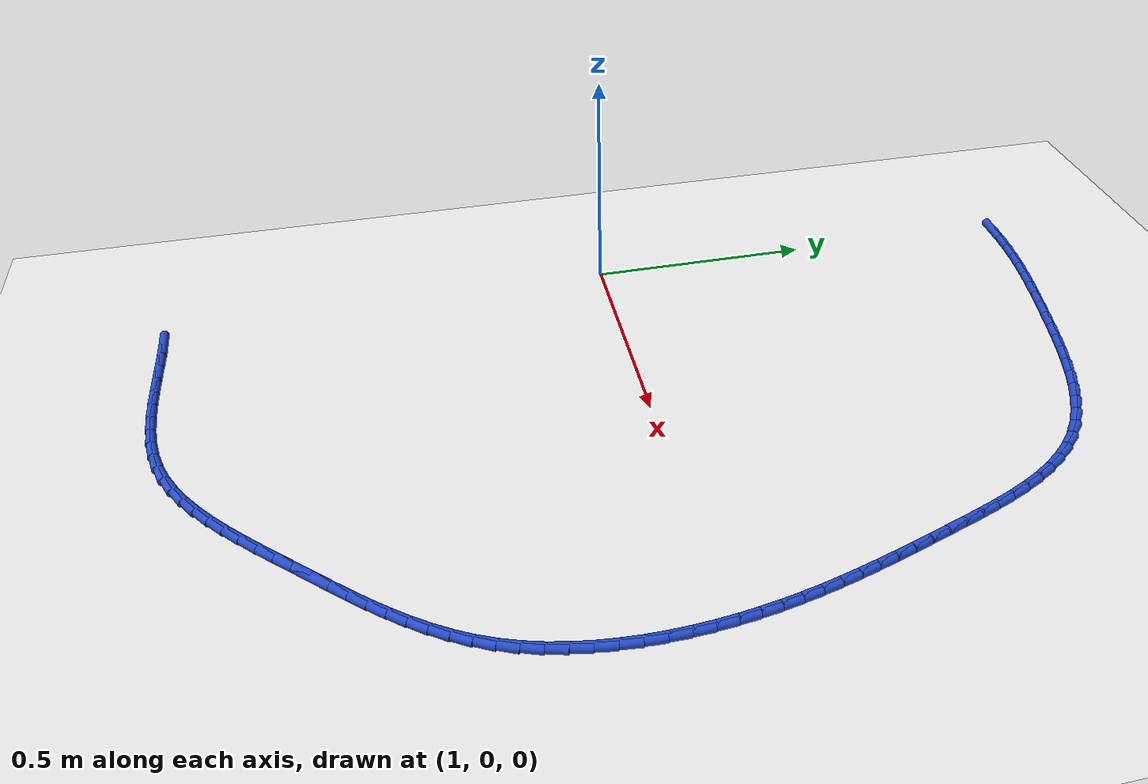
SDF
<sdf version="1.6">
 <world name="default">
  <model name="ground_plane">
   <static>1</static>
   <link name="link">
    <collision name="collision">
     <geometry><plane><normal>0 0 1</normal><size>100 100</size></plane></geometry>
     <surface><friction><ode><mu>100</mu><mu2>50</mu2></ode></friction></surface>
    </collision>
    <visual name="visual">
     <cast_shadows>0</cast_shadows>
     <geometry><plane><normal>0 0 1</normal><size>100 100</size></plane></geometry>
     <material>
      <script><uri>file://media/materials/scripts/gazebo.material</uri><name>Gazebo/WhiteGlow</name></script>
     </material>
    </visual>
   </link>
  </model>
  <model name="line">
   <link name="link_39">
    <pose>1.0367507970133014 1.0144253928978786 0.01 0 1.57 -0.028605266189398515</pose>
    <collision name="collision">
     <geometry><cylinder><radius>0.01</radius><length>0.08</length></cylinder></geometry>
    </collision>
    <visual name="visual">
     <material>
      <script><name>Gazebo/Blue</name><uri>file://media/materials/scripts/gazebo.material</uri></script>
     </material>
     <geometry><cylinder><radius>0.01</radius><length>0.08</length></cylinder></geometry>
    </visual>
   </link>
   <link name="link_40">
    <pose>1.0774809376484957 1.0132599784945855 0.01 0 1.57 -0.06942494627487604</pose>
    <collision name="collision">
     <geometry><cylinder><radius>0.01</radius><length>0.08</length></cylinder></geometry>
    </collision>
    <visual name="visual">
     <material>
      <script><name>Gazebo/Blue</name><uri>file://media/materials/scripts/gazebo.material</uri></script>
     </material>
     <geometry><cylinder><radius>0.01</radius><length>0.08</length></cylinder></geometry>
    </visual>
   </link>
   <link name="link_41">
    <pose>1.117806039749113 1.0104559039516745 0.01 0 1.57 -0.10687129788580829</pose>
    <collision name="collision">
     <geometry><cylinder><radius>0.01</radius><length>0.08</length></cylinder></geometry>
    </collision>
    <visual name="visual">
     <material>
      <script><name>Gazebo/Blue</name><uri>file://media/materials/scripts/gazebo.material</uri></script>
     </material>
     <geometry><cylinder><radius>0.01</radius><length>0.08</length></cylinder></geometry>
    </visual>
   </link>
   <link name="link_42">
    <pose>1.1577941958818514 1.0061659729103958 0.01 0 1.57 -0.13987777914664257</pose>
    <collision name="collision">
     <geometry><cylinder><radius>0.01</radius><length>0.08</length></cylinder></geometry>
    </collision>
    <visual name="visual">
     <material>
      <script><name>Gazebo/Blue</name><uri>file://media/materials/scripts/gazebo.material</uri></script>
     </material>
     <geometry><cylinder><radius>0.01</radius><length>0.08</length></cylinder></geometry>
    </visual>
   </link>
   <link name="link_43">
    <pose>1.1975665140257667 1.0005661399250065 0.01 0 1.57 -0.16811064082272698</pose>
    <collision name="collision">
     <geometry><cylinder><radius>0.01</radius><length>0.08</length></cylinder></geometry>
    </collision>
    <visual name="visual">
     <material>
      <script><name>Gazebo/Blue</name><uri>file://media/materials/scripts/gazebo.material</uri></script>
     </material>
     <geometry><cylinder><radius>0.01</radius><length>0.08</length></cylinder></geometry>
    </visual>
   </link>
   <link name="link_44">
    <pose>1.2372441036450272 0.9938323601982882 0.01 0 1.57 -0.19135759226672464</pose>
    <collision name="collision">
     <geometry><cylinder><radius>0.01</radius><length>0.08</length></cylinder></geometry>
    </collision>
    <visual name="visual">
     <material>
      <script><name>Gazebo/Blue</name><uri>file://media/materials/scripts/gazebo.material</uri></script>
     </material>
     <geometry><cylinder><radius>0.01</radius><length>0.08</length></cylinder></geometry>
    </visual>
   </link>
   <link name="link_45">
    <pose>1.2769480742038002 0.9861405889330218 0.01 0 1.57 -0.20951436941970664</pose>
    <collision name="collision">
     <geometry><cylinder><radius>0.01</radius><length>0.08</length></cylinder></geometry>
    </collision>
    <visual name="visual">
     <material>
      <script><name>Gazebo/Blue</name><uri>file://media/materials/scripts/gazebo.material</uri></script>
     </material>
     <geometry><cylinder><radius>0.01</radius><length>0.08</length></cylinder></geometry>
    </visual>
   </link>
   <link name="link_46">
    <pose>1.3167995351662545 0.9776667813319883 0.01 0 1.57 -0.22256850336323453</pose>
    <collision name="collision">
     <geometry><cylinder><radius>0.01</radius><length>0.08</length></cylinder></geometry>
    </collision>
    <visual name="visual">
     <material>
      <script><name>Gazebo/Blue</name><uri>file://media/materials/scripts/gazebo.material</uri></script>
     </material>
     <geometry><cylinder><radius>0.01</radius><length>0.08</length></cylinder></geometry>
    </visual>
   </link>
   <link name="link_47">
    <pose>1.3569195959965565 0.9685868925979682 0.01 0 1.57 -0.23058313491844468</pose>
    <collision name="collision">
     <geometry><cylinder><radius>0.01</radius><length>0.08</length></cylinder></geometry>
    </collision>
    <visual name="visual">
     <material>
      <script><name>Gazebo/Blue</name><uri>file://media/materials/scripts/gazebo.material</uri></script>
     </material>
     <geometry><cylinder><radius>0.01</radius><length>0.08</length></cylinder></geometry>
    </visual>
   </link>
   <link name="link_48">
    <pose>1.397429365941651 0.9590768777201986 0.01 0 1.57 -0.23593071247263447</pose>
    <collision name="collision">
     <geometry><cylinder><radius>0.01</radius><length>0.08</length></cylinder></geometry>
    </collision>
    <visual name="visual">
     <material>
      <script><name>Gazebo/Blue</name><uri>file://media/materials/scripts/gazebo.material</uri></script>
     </material>
     <geometry><cylinder><radius>0.01</radius><length>0.08</length></cylinder></geometry>
    </visual>
   </link>
   <link name="link_49">
    <pose>1.438370269826245 0.9492343574030682 0.01 0 1.57 -0.24728312318332435</pose>
    <collision name="collision">
     <geometry><cylinder><radius>0.01</radius><length>0.08</length></cylinder></geometry>
    </collision>
    <visual name="visual">
     <material>
      <script><name>Gazebo/Blue</name><uri>file://media/materials/scripts/gazebo.material</uri></script>
     </material>
     <geometry><cylinder><radius>0.01</radius><length>0.08</length></cylinder></geometry>
    </visual>
   </link>
   <link name="link_50">
    <pose>1.4794782547721101 0.9388566505262729 0.01 0 1.57 -0.2667672953551547</pose>
    <collision name="collision">
     <geometry><cylinder><radius>0.01</radius><length>0.08</length></cylinder></geometry>
    </collision>
    <visual name="visual">
     <material>
      <script><name>Gazebo/Blue</name><uri>file://media/materials/scripts/gazebo.material</uri></script>
     </material>
     <geometry><cylinder><radius>0.01</radius><length>0.08</length></cylinder></geometry>
    </visual>
   </link>
   <link name="link_51">
    <pose>1.5204160766709118 0.9276691248590326 0.01 0 1.57 -0.29469518178689097</pose>
    <collision name="collision">
     <geometry><cylinder><radius>0.01</radius><length>0.08</length></cylinder></geometry>
    </collision>
    <visual name="visual">
     <material>
      <script><name>Gazebo/Blue</name><uri>file://media/materials/scripts/gazebo.material</uri></script>
     </material>
     <geometry><cylinder><radius>0.01</radius><length>0.08</length></cylinder></geometry>
    </visual>
   </link>
   <link name="link_52">
    <pose>1.5608464914143148 0.9153971481705673 0.01 0 1.57 -0.33162584808636714</pose>
    <collision name="collision">
     <geometry><cylinder><radius>0.01</radius><length>0.08</length></cylinder></geometry>
    </collision>
    <visual name="visual">
     <material>
      <script><name>Gazebo/Blue</name><uri>file://media/materials/scripts/gazebo.material</uri></script>
     </material>
     <geometry><cylinder><radius>0.01</radius><length>0.08</length></cylinder></geometry>
    </visual>
   </link>
   <link name="link_53">
    <pose>1.600432254893986 0.9017660882300967 0.01 0 1.57 -0.37833221064710937</pose>
    <collision name="collision">
     <geometry><cylinder><radius>0.01</radius><length>0.08</length></cylinder></geometry>
    </collision>
    <visual name="visual">
     <material>
      <script><name>Gazebo/Blue</name><uri>file://media/materials/scripts/gazebo.material</uri></script>
     </material>
     <geometry><cylinder><radius>0.01</radius><length>0.08</length></cylinder></geometry>
    </visual>
   </link>
   <link name="link_54">
    <pose>1.6388361230015893 0.8865013128068412 0.01 0 1.57 -0.435741831799265</pose>
    <collision name="collision">
     <geometry><cylinder><radius>0.01</radius><length>0.08</length></cylinder></geometry>
    </collision>
    <visual name="visual">
     <material>
      <script><name>Gazebo/Blue</name><uri>file://media/materials/scripts/gazebo.material</uri></script>
     </material>
     <geometry><cylinder><radius>0.01</radius><length>0.08</length></cylinder></geometry>
    </visual>
   </link>
   <link name="link_55">
    <pose>1.6757208516287918 0.8693281896700208 0.01 0 1.57 -0.504824924632468</pose>
    <collision name="collision">
     <geometry><cylinder><radius>0.01</radius><length>0.08</length></cylinder></geometry>
    </collision>
    <visual name="visual">
     <material>
      <script><name>Gazebo/Blue</name><uri>file://media/materials/scripts/gazebo.material</uri></script>
     </material>
     <geometry><cylinder><radius>0.01</radius><length>0.08</length></cylinder></geometry>
    </visual>
   </link>
   <link name="link_56">
    <pose>1.7107491966672586 0.8499720865888549 0.01 0 1.57 -0.586396424867699</pose>
    <collision name="collision">
     <geometry><cylinder><radius>0.01</radius><length>0.08</length></cylinder></geometry>
    </collision>
    <visual name="visual">
     <material>
      <script><name>Gazebo/Blue</name><uri>file://media/materials/scripts/gazebo.material</uri></script>
     </material>
     <geometry><cylinder><radius>0.01</radius><length>0.08</length></cylinder></geometry>
    </visual>
   </link>
   <link name="link_57">
    <pose>1.743583914008655 0.8281583713325641 0.01 0 1.57 -0.6808057359868638</pose>
    <collision name="collision">
     <geometry><cylinder><radius>0.01</radius><length>0.08</length></cylinder></geometry>
    </collision>
    <visual name="visual">
     <material>
      <script><name>Gazebo/Blue</name><uri>file://media/materials/scripts/gazebo.material</uri></script>
     </material>
     <geometry><cylinder><radius>0.01</radius><length>0.08</length></cylinder></geometry>
    </visual>
   </link>
   <link name="link_58">
    <pose>1.773887759544648 0.8036124116703681 0.01 0 1.57 -0.7867190012757334</pose>
    <collision name="collision">
     <geometry><cylinder><radius>0.01</radius><length>0.08</length></cylinder></geometry>
    </collision>
    <visual name="visual">
     <material>
      <script><name>Gazebo/Blue</name><uri>file://media/materials/scripts/gazebo.material</uri></script>
     </material>
     <geometry><cylinder><radius>0.01</radius><length>0.08</length></cylinder></geometry>
    </visual>
   </link>
   <link name="link_59">
    <pose>1.8013454860646658 0.7760820547646701 0.01 0 1.57 -0.8899946766511091</pose>
    <collision name="collision">
     <geometry><cylinder><radius>0.01</radius><length>0.08</length></cylinder></geometry>
    </collision>
    <visual name="visual">
     <material>
      <script><name>Gazebo/Blue</name><uri>file://media/materials/scripts/gazebo.material</uri></script>
     </material>
     <geometry><cylinder><radius>0.01</radius><length>0.08</length></cylinder></geometry>
    </visual>
   </link>
   <link name="link_60">
    <pose>1.825983505169716 0.7456643007739819 0.01 0 1.57 -0.979455108823791</pose>
    <collision name="collision">
     <geometry><cylinder><radius>0.01</radius><length>0.08</length></cylinder></geometry>
    </collision>
    <visual name="visual">
     <material>
      <script><name>Gazebo/Blue</name><uri>file://media/materials/scripts/gazebo.material</uri></script>
     </material>
     <geometry><cylinder><radius>0.01</radius><length>0.08</length></cylinder></geometry>
    </visual>
   </link>
   <link name="link_61">
    <pose>1.8480977922195192 0.7127316264164983 0.01 0 1.57 -1.054768374926705</pose>
    <collision name="collision">
     <geometry><cylinder><radius>0.01</radius><length>0.08</length></cylinder></geometry>
    </collision>
    <visual name="visual">
     <material>
      <script><name>Gazebo/Blue</name><uri>file://media/materials/scripts/gazebo.material</uri></script>
     </material>
     <geometry><cylinder><radius>0.01</radius><length>0.08</length></cylinder></geometry>
    </visual>
   </link>
   <link name="link_62">
    <pose>1.8679916460829438 0.6776639925585599 0.01 0 1.57 -1.1166351672617465</pose>
    <collision name="collision">
     <geometry><cylinder><radius>0.01</radius><length>0.08</length></cylinder></geometry>
    </collision>
    <visual name="visual">
     <material>
      <script><name>Gazebo/Blue</name><uri>file://media/materials/scripts/gazebo.material</uri></script>
     </material>
     <geometry><cylinder><radius>0.01</radius><length>0.08</length></cylinder></geometry>
    </visual>
   </link>
   <link name="link_63">
    <pose>1.88596836562886 0.6408413600665069 0.01 0 1.57 -1.1660714495590405</pose>
    <collision name="collision">
     <geometry><cylinder><radius>0.01</radius><length>0.08</length></cylinder></geometry>
    </collision>
    <visual name="visual">
     <material>
      <script><name>Gazebo/Blue</name><uri>file://media/materials/scripts/gazebo.material</uri></script>
     </material>
     <geometry><cylinder><radius>0.01</radius><length>0.08</length></cylinder></geometry>
    </visual>
   </link>
   <link name="link_64">
    <pose>1.9023312497261353 0.6026436898066801 0.01 0 1.57 -1.2041068189361204</pose>
    <collision name="collision">
     <geometry><cylinder><radius>0.01</radius><length>0.08</length></cylinder></geometry>
    </collision>
    <visual name="visual">
     <material>
      <script><name>Gazebo/Blue</name><uri>file://media/materials/scripts/gazebo.material</uri></script>
     </material>
     <geometry><cylinder><radius>0.01</radius><length>0.08</length></cylinder></geometry>
    </visual>
   </link>
   <link name="link_65">
    <pose>1.9173835972436395 0.5634509426454196 0.01 0 1.57 -1.2316092471743287</pose>
    <collision name="collision">
     <geometry><cylinder><radius>0.01</radius><length>0.08</length></cylinder></geometry>
    </collision>
    <visual name="visual">
     <material>
      <script><name>Gazebo/Blue</name><uri>file://media/materials/scripts/gazebo.material</uri></script>
     </material>
     <geometry><cylinder><radius>0.01</radius><length>0.08</length></cylinder></geometry>
    </visual>
   </link>
   <link name="link_66">
    <pose>1.9314287070502423 0.5236430794490659 0.01 0 1.57 -1.2491919133903944</pose>
    <collision name="collision">
     <geometry><cylinder><radius>0.01</radius><length>0.08</length></cylinder></geometry>
    </collision>
    <visual name="visual">
     <material>
      <script><name>Gazebo/Blue</name><uri>file://media/materials/scripts/gazebo.material</uri></script>
     </material>
     <geometry><cylinder><radius>0.01</radius><length>0.08</length></cylinder></geometry>
    </visual>
   </link>
   <link name="link_67">
    <pose>1.9447698780148122 0.4836000610839598 0.01 0 1.57 -1.257188649435996</pose>
    <collision name="collision">
     <geometry><cylinder><radius>0.01</radius><length>0.08</length></cylinder></geometry>
    </collision>
    <visual name="visual">
     <material>
      <script><name>Gazebo/Blue</name><uri>file://media/materials/scripts/gazebo.material</uri></script>
     </material>
     <geometry><cylinder><radius>0.01</radius><length>0.08</length></cylinder></geometry>
    </visual>
   </link>
   <link name="link_68">
    <pose>1.957709583214773 0.44370087262716457 0.01 0 1.57 -1.2594267739394696</pose>
    <collision name="collision">
     <geometry><cylinder><radius>0.01</radius><length>0.08</length></cylinder></geometry>
    </collision>
    <visual name="visual">
     <material>
      <script><name>Gazebo/Blue</name><uri>file://media/materials/scripts/gazebo.material</uri></script>
     </material>
     <geometry><cylinder><radius>0.01</radius><length>0.08</length></cylinder></geometry>
    </visual>
   </link>
   <link name="link_69">
    <pose>1.9704286629947136 0.4041807728952091 0.01 0 1.57 -1.2637239103937679</pose>
    <collision name="collision">
     <geometry><cylinder><radius>0.01</radius><length>0.08</length></cylinder></geometry>
    </collision>
    <visual name="visual">
     <material>
      <script><name>Gazebo/Blue</name><uri>file://media/materials/scripts/gazebo.material</uri></script>
     </material>
     <geometry><cylinder><radius>0.01</radius><length>0.08</length></cylinder></geometry>
    </visual>
   </link>
   <link name="link_70">
    <pose>1.9828590440624827 0.3649808940713424 0.01 0 1.57 -1.271102456970719</pose>
    <collision name="collision">
     <geometry><cylinder><radius>0.01</radius><length>0.08</length></cylinder></geometry>
    </collision>
    <visual name="visual">
     <material>
      <script><name>Gazebo/Blue</name><uri>file://media/materials/scripts/gazebo.material</uri></script>
     </material>
     <geometry><cylinder><radius>0.01</radius><length>0.08</length></cylinder></geometry>
    </visual>
   </link>
   <link name="link_71">
    <pose>1.9949022008894843 0.3260063847185581 0.01 0 1.57 -1.2816034752895846</pose>
    <collision name="collision">
     <geometry><cylinder><radius>0.01</radius><length>0.08</length></cylinder></geometry>
    </collision>
    <visual name="visual">
     <material>
      <script><name>Gazebo/Blue</name><uri>file://media/materials/scripts/gazebo.material</uri></script>
     </material>
     <geometry><cylinder><radius>0.01</radius><length>0.08</length></cylinder></geometry>
    </visual>
   </link>
   <link name="link_72">
    <pose>2.006459607947122 0.2871623933998507 0.01 0 1.57 -1.295237514780174</pose>
    <collision name="collision">
     <geometry><cylinder><radius>0.01</radius><length>0.08</length></cylinder></geometry>
    </collision>
    <visual name="visual">
     <material>
      <script><name>Gazebo/Blue</name><uri>file://media/materials/scripts/gazebo.material</uri></script>
     </material>
     <geometry><cylinder><radius>0.01</radius><length>0.08</length></cylinder></geometry>
    </visual>
   </link>
   <link name="link_73">
    <pose>2.0174327397068 0.24835406867821344 0.01 0 1.57 -1.3119804130518693</pose>
    <collision name="collision">
     <geometry><cylinder><radius>0.01</radius><length>0.08</length></cylinder></geometry>
    </collision>
    <visual name="visual">
     <material>
      <script><name>Gazebo/Blue</name><uri>file://media/materials/scripts/gazebo.material</uri></script>
     </material>
     <geometry><cylinder><radius>0.01</radius><length>0.08</length></cylinder></geometry>
    </visual>
   </link>
   <link name="link_74">
    <pose>2.027723070639923 0.20948655911664096 0.01 0 1.57 -1.331769019522971</pose>
    <collision name="collision">
     <geometry><cylinder><radius>0.01</radius><length>0.08</length></cylinder></geometry>
    </collision>
    <visual name="visual">
     <material>
      <script><name>Gazebo/Blue</name><uri>file://media/materials/scripts/gazebo.material</uri></script>
     </material>
     <geometry><cylinder><radius>0.01</radius><length>0.08</length></cylinder></geometry>
    </visual>
   </link>
   <link name="link_75">
    <pose>2.037232075217896 0.17046501327812685 0.01 0 1.57 -1.3544972478748307</pose>
    <collision name="collision">
     <geometry><cylinder><radius>0.01</radius><length>0.08</length></cylinder></geometry>
    </collision>
    <visual name="visual">
     <material>
      <script><name>Gazebo/Blue</name><uri>file://media/materials/scripts/gazebo.material</uri></script>
     </material>
     <geometry><cylinder><radius>0.01</radius><length>0.08</length></cylinder></geometry>
    </visual>
   </link>
   <link name="link_76">
    <pose>2.0458612279121207 0.13119457972566445 0.01 0 1.57 -1.380012985655619</pose>
    <collision name="collision">
     <geometry><cylinder><radius>0.01</radius><length>0.08</length></cylinder></geometry>
    </collision>
    <visual name="visual">
     <material>
      <script><name>Gazebo/Blue</name><uri>file://media/materials/scripts/gazebo.material</uri></script>
     </material>
     <geometry><cylinder><radius>0.01</radius><length>0.08</length></cylinder></geometry>
    </visual>
   </link>
   <link name="link_77">
    <pose>2.0535120031940033 0.09158040702224854 0.01 0 1.57 -1.408116469061944</pose>
    <collision name="collision">
     <geometry><cylinder><radius>0.01</radius><length>0.08</length></cylinder></geometry>
    </collision>
    <visual name="visual">
     <material>
      <script><name>Gazebo/Blue</name><uri>file://media/materials/scripts/gazebo.material</uri></script>
     </material>
     <geometry><cylinder><radius>0.01</radius><length>0.08</length></cylinder></geometry>
    </visual>
   </link>
   <link name="link_78">
    <pose>2.0600858755349476 0.051527643730872284 0.01 0 1.57 -1.4385604136900199</pose>
    <collision name="collision">
     <geometry><cylinder><radius>0.01</radius><length>0.08</length></cylinder></geometry>
    </collision>
    <visual name="visual">
     <material>
      <script><name>Gazebo/Blue</name><uri>file://media/materials/scripts/gazebo.material</uri></script>
     </material>
     <geometry><cylinder><radius>0.01</radius><length>0.08</length></cylinder></geometry>
    </visual>
   </link>
   <link name="link_79">
    <pose>2.065484200657087 0.010942430454969728 0.01 0 1.57 -1.4711004929491247</pose>
    <collision name="collision">
     <geometry><cylinder><radius>0.01</radius><length>0.08</length></cylinder></geometry>
    </collision>
    <visual name="visual">
     <material>
      <script><name>Gazebo/Blue</name><uri>file://media/materials/scripts/gazebo.material</uri></script>
     </material>
     <geometry><cylinder><radius>0.01</radius><length>0.08</length></cylinder></geometry>
    </visual>
   </link>
   <link name="link_80">
    <pose>2.069597078895138 -0.030175063840003086 0.01 0 1.57 -1.5058635354501921</pose>
    <collision name="collision">
     <geometry><cylinder><radius>0.01</radius><length>0.08</length></cylinder></geometry>
    </collision>
    <visual name="visual">
     <material>
      <script><name>Gazebo/Blue</name><uri>file://media/materials/scripts/gazebo.material</uri></script>
     </material>
     <geometry><cylinder><radius>0.01</radius><length>0.08</length></cylinder></geometry>
    </visual>
   </link>
   <link name="link_81">
    <pose>2.0722942525323442 -0.07165459747907219 0.01 0 1.57 -1.5432169029681508</pose>
    <collision name="collision">
     <geometry><cylinder><radius>0.01</radius><length>0.08</length></cylinder></geometry>
    </collision>
    <visual name="visual">
     <material>
      <script><name>Gazebo/Blue</name><uri>file://media/materials/scripts/gazebo.material</uri></script>
     </material>
     <geometry><cylinder><radius>0.01</radius><length>0.08</length></cylinder></geometry>
    </visual>
   </link>
   <link name="link_82">
    <pose>2.073443321619876 -0.11330803241770135 0.01 0 1.57 1.5580341560146838</pose>
    <collision name="collision">
     <geometry><cylinder><radius>0.01</radius><length>0.08</length></cylinder></geometry>
    </collision>
    <visual name="visual">
     <material>
      <script><name>Gazebo/Blue</name><uri>file://media/materials/scripts/gazebo.material</uri></script>
     </material>
     <geometry><cylinder><radius>0.01</radius><length>0.08</length></cylinder></geometry>
    </visual>
   </link>
   <link name="link_83">
    <pose>2.072911886208904 -0.15494723061135213 0.01 0 1.57 1.5142803309099493</pose>
    <collision name="collision">
     <geometry><cylinder><radius>0.01</radius><length>0.08</length></cylinder></geometry>
    </collision>
    <visual name="visual">
     <material>
      <script><name>Gazebo/Blue</name><uri>file://media/materials/scripts/gazebo.material</uri></script>
     </material>
     <geometry><cylinder><radius>0.01</radius><length>0.08</length></cylinder></geometry>
    </visual>
   </link>
   <link name="link_84">
    <pose>2.0705675463505977 -0.1963840540154882 0.01 0 1.57 1.466666896881187</pose>
    <collision name="collision">
     <geometry><cylinder><radius>0.01</radius><length>0.08</length></cylinder></geometry>
    </collision>
    <visual name="visual">
     <material>
      <script><name>Gazebo/Blue</name><uri>file://media/materials/scripts/gazebo.material</uri></script>
     </material>
     <geometry><cylinder><radius>0.01</radius><length>0.08</length></cylinder></geometry>
    </visual>
   </link>
   <link name="link_85">
    <pose>2.0662779020961297 -0.23743036458557273 0.01 0 1.57 1.4147317116362503</pose>
    <collision name="collision">
     <geometry><cylinder><radius>0.01</radius><length>0.08</length></cylinder></geometry>
    </collision>
    <visual name="visual">
     <material>
      <script><name>Gazebo/Blue</name><uri>file://media/materials/scripts/gazebo.material</uri></script>
     </material>
     <geometry><cylinder><radius>0.01</radius><length>0.08</length></cylinder></geometry>
    </visual>
   </link>
   <link name="link_86">
    <pose>2.0599105534966684 -0.27789802427706867 0.01 0 1.57 1.358014855889131</pose>
    <collision name="collision">
     <geometry><cylinder><radius>0.01</radius><length>0.08</length></cylinder></geometry>
    </collision>
    <visual name="visual">
     <material>
      <script><name>Gazebo/Blue</name><uri>file://media/materials/scripts/gazebo.material</uri></script>
     </material>
     <geometry><cylinder><radius>0.01</radius><length>0.08</length></cylinder></geometry>
    </visual>
   </link>
   <link name="link_87">
    <pose>2.051333100603386 -0.31759889504543976 0.01 0 1.57 1.2960869826346113</pose>
    <collision name="collision">
     <geometry><cylinder><radius>0.01</radius><length>0.08</length></cylinder></geometry>
    </collision>
    <visual name="visual">
     <material>
      <script><name>Gazebo/Blue</name><uri>file://media/materials/scripts/gazebo.material</uri></script>
     </material>
     <geometry><cylinder><radius>0.01</radius><length>0.08</length></cylinder></geometry>
    </visual>
   </link>
   <link name="link_88">
    <pose>2.0404131434674526 -0.35634483884614776 0.01 0 1.57 1.2285919402610261</pose>
    <collision name="collision">
     <geometry><cylinder><radius>0.01</radius><length>0.08</length></cylinder></geometry>
    </collision>
    <visual name="visual">
     <material>
      <script><name>Gazebo/Blue</name><uri>file://media/materials/scripts/gazebo.material</uri></script>
     </material>
     <geometry><cylinder><radius>0.01</radius><length>0.08</length></cylinder></geometry>
    </visual>
   </link>
   <link name="link_89">
    <pose>2.027018282140039 -0.393947717634656 0.01 0 1.57 1.1558191294050153</pose>
    <collision name="collision">
     <geometry><cylinder><radius>0.01</radius><length>0.08</length></cylinder></geometry>
    </collision>
    <visual name="visual">
     <material>
      <script><name>Gazebo/Blue</name><uri>file://media/materials/scripts/gazebo.material</uri></script>
     </material>
     <geometry><cylinder><radius>0.01</radius><length>0.08</length></cylinder></geometry>
    </visual>
   </link>
   <link name="link_90">
    <pose>2.0110320026202166 -0.43023386554884474 0.01 0 1.57 1.085114792161752</pose>
    <collision name="collision">
     <geometry><cylinder><radius>0.01</radius><length>0.08</length></cylinder></geometry>
    </collision>
    <visual name="visual">
     <material>
      <script><name>Gazebo/Blue</name><uri>file://media/materials/scripts/gazebo.material</uri></script>
     </material>
     <geometry><cylinder><radius>0.01</radius><length>0.08</length></cylinder></geometry>
    </visual>
   </link>
   <link name="link_91">
    <pose>1.9925587024602627 -0.46523086831799926 0.01 0 1.57 1.0225081261274573</pose>
    <collision name="collision">
     <geometry><cylinder><radius>0.01</radius><length>0.08</length></cylinder></geometry>
    </collision>
    <visual name="visual">
     <material>
      <script><name>Gazebo/Blue</name><uri>file://media/materials/scripts/gazebo.material</uri></script>
     </material>
     <geometry><cylinder><radius>0.01</radius><length>0.08</length></cylinder></geometry>
    </visual>
   </link>
   <link name="link_92">
    <pose>1.9718646398059438 -0.4991137675267117 0.01 0 1.57 0.9686401800426521</pose>
    <collision name="collision">
     <geometry><cylinder><radius>0.01</radius><length>0.08</length></cylinder></geometry>
    </collision>
    <visual name="visual">
     <material>
      <script><name>Gazebo/Blue</name><uri>file://media/materials/scripts/gazebo.material</uri></script>
     </material>
     <geometry><cylinder><radius>0.01</radius><length>0.08</length></cylinder></geometry>
    </visual>
   </link>
   <link name="link_93">
    <pose>1.9492197892493381 -0.5320609904617863 0.01 0 1.57 0.9236631088228205</pose>
    <collision name="collision">
     <geometry><cylinder><radius>0.01</radius><length>0.08</length></cylinder></geometry>
    </collision>
    <visual name="visual">
     <material>
      <script><name>Gazebo/Blue</name><uri>file://media/materials/scripts/gazebo.material</uri></script>
     </material>
     <geometry><cylinder><radius>0.01</radius><length>0.08</length></cylinder></geometry>
    </visual>
   </link>
   <link name="link_94">
    <pose>1.924894125382523 -0.5642509644100292 0.01 0 1.57 0.8874813083174484</pose>
    <collision name="collision">
     <geometry><cylinder><radius>0.01</radius><length>0.08</length></cylinder></geometry>
    </collision>
    <visual name="visual">
     <material>
      <script><name>Gazebo/Blue</name><uri>file://media/materials/scripts/gazebo.material</uri></script>
     </material>
     <geometry><cylinder><radius>0.01</radius><length>0.08</length></cylinder></geometry>
    </visual>
   </link>
   <link name="link_95">
    <pose>1.8991576227975746 -0.5958621166582447 0.01 0 1.57 0.859860528278943</pose>
    <collision name="collision">
     <geometry><cylinder><radius>0.01</radius><length>0.08</length></cylinder></geometry>
    </collision>
    <visual name="visual">
     <material>
      <script><name>Gazebo/Blue</name><uri>file://media/materials/scripts/gazebo.material</uri></script>
     </material>
     <geometry><cylinder><radius>0.01</radius><length>0.08</length></cylinder></geometry>
    </visual>
   </link>
   <link name="link_96">
    <pose>1.8722802560865728 -0.6270728744932396 0.01 0 1.57 0.8405124878288316</pose>
    <collision name="collision">
     <geometry><cylinder><radius>0.01</radius><length>0.08</length></cylinder></geometry>
    </collision>
    <visual name="visual">
     <material>
      <script><name>Gazebo/Blue</name><uri>file://media/materials/scripts/gazebo.material</uri></script>
     </material>
     <geometry><cylinder><radius>0.01</radius><length>0.08</length></cylinder></geometry>
    </visual>
   </link>
   <link name="link_97">
    <pose>1.8445319998415948 -0.6580616652018175 0.01 0 1.57 0.8291530842668882</pose>
    <collision name="collision">
     <geometry><cylinder><radius>0.01</radius><length>0.08</length></cylinder></geometry>
    </collision>
    <visual name="visual">
     <material>
      <script><name>Gazebo/Blue</name><uri>file://media/materials/scripts/gazebo.material</uri></script>
     </material>
     <geometry><cylinder><radius>0.01</radius><length>0.08</length></cylinder></geometry>
    </visual>
   </link>
   <link name="link_98">
    <pose>1.8161828286547181 -0.6890069160707843 0.01 0 1.57 0.825537515198468</pose>
    <collision name="collision">
     <geometry><cylinder><radius>0.01</radius><length>0.08</length></cylinder></geometry>
    </collision>
    <visual name="visual">
     <material>
      <script><name>Gazebo/Blue</name><uri>file://media/materials/scripts/gazebo.material</uri></script>
     </material>
     <geometry><cylinder><radius>0.01</radius><length>0.08</length></cylinder></geometry>
    </visual>
   </link>
   <link name="link_99">
    <pose>1.7875027171180193 -0.7200870543869451 0.01 0 1.57 0.8275646270935513</pose>
    <collision name="collision">
     <geometry><cylinder><radius>0.01</radius><length>0.08</length></cylinder></geometry>
    </collision>
    <visual name="visual">
     <material>
      <script><name>Gazebo/Blue</name><uri>file://media/materials/scripts/gazebo.material</uri></script>
     </material>
     <geometry><cylinder><radius>0.01</radius><length>0.08</length></cylinder></geometry>
    </visual>
   </link>
   <link name="link_100">
    <pose>1.758715125970543 -0.7514108327139039 0.01 0 1.57 0.824160138579475</pose>
    <collision name="collision">
     <geometry><cylinder><radius>0.01</radius><length>0.08</length></cylinder></geometry>
    </collision>
    <visual name="visual">
     <material>
      <script><name>Gazebo/Blue</name><uri>file://media/materials/scripts/gazebo.material</uri></script>
     </material>
     <geometry><cylinder><radius>0.01</radius><length>0.08</length></cylinder></geometry>
    </visual>
   </link>
   <link name="link_101">
    <pose>1.7297755489761597 -0.782685606534532 0.01 0 1.57 0.8113471755415333</pose>
    <collision name="collision">
     <geometry><cylinder><radius>0.01</radius><length>0.08</length></cylinder></geometry>
    </collision>
    <visual name="visual">
     <material>
      <script><name>Gazebo/Blue</name><uri>file://media/materials/scripts/gazebo.material</uri></script>
     </material>
     <geometry><cylinder><radius>0.01</radius><length>0.08</length></cylinder></geometry>
    </visual>
   </link>
   <link name="link_102">
    <pose>1.7005437179408827 -0.8134752861541507 0.01 0 1.57 0.7888221928043476</pose>
    <collision name="collision">
     <geometry><cylinder><radius>0.01</radius><length>0.08</length></cylinder></geometry>
    </collision>
    <visual name="visual">
     <material>
      <script><name>Gazebo/Blue</name><uri>file://media/materials/scripts/gazebo.material</uri></script>
     </material>
     <geometry><cylinder><radius>0.01</radius><length>0.08</length></cylinder></geometry>
    </visual>
   </link>
   <link name="link_103">
    <pose>1.6708792447172214 -0.843343602195547 0.01 0 1.57 0.7560130280427678</pose>
    <collision name="collision">
     <geometry><cylinder><radius>0.01</radius><length>0.08</length></cylinder></geometry>
    </collision>
    <visual name="visual">
     <material>
      <script><name>Gazebo/Blue</name><uri>file://media/materials/scripts/gazebo.material</uri></script>
     </material>
     <geometry><cylinder><radius>0.01</radius><length>0.08</length></cylinder></geometry>
    </visual>
   </link>
   <link name="link_104">
    <pose>1.6406417411576872 -0.8718542852815091 0.01 0 1.57 0.7121065821782142</pose>
    <collision name="collision">
     <geometry><cylinder><radius>0.01</radius><length>0.08</length></cylinder></geometry>
    </collision>
    <visual name="visual">
     <material>
      <script><name>Gazebo/Blue</name><uri>file://media/materials/scripts/gazebo.material</uri></script>
     </material>
     <geometry><cylinder><radius>0.01</radius><length>0.08</length></cylinder></geometry>
    </visual>
   </link>
   <link name="link_105">
    <pose>1.60969081911479 -0.8985710660348237 0.01 0 1.57 0.656118866625765</pose>
    <collision name="collision">
     <geometry><cylinder><radius>0.01</radius><length>0.08</length></cylinder></geometry>
    </collision>
    <visual name="visual">
     <material>
      <script><name>Gazebo/Blue</name><uri>file://media/materials/scripts/gazebo.material</uri></script>
     </material>
     <geometry><cylinder><radius>0.01</radius><length>0.08</length></cylinder></geometry>
    </visual>
   </link>
   <link name="link_106">
    <pose>1.5778860904410406 -0.9230576750782796 0.01 0 1.57 0.5870356520527413</pose>
    <collision name="collision">
     <geometry><cylinder><radius>0.01</radius><length>0.08</length></cylinder></geometry>
    </collision>
    <visual name="visual">
     <material>
      <script><name>Gazebo/Blue</name><uri>file://media/materials/scripts/gazebo.material</uri></script>
     </material>
     <geometry><cylinder><radius>0.01</radius><length>0.08</length></cylinder></geometry>
    </visual>
   </link>
   <link name="link_107">
    <pose>1.54508716698895 -0.9448778430346624 0.01 0 1.57 0.5040648086811972</pose>
    <collision name="collision">
     <geometry><cylinder><radius>0.01</radius><length>0.08</length></cylinder></geometry>
    </collision>
    <visual name="visual">
     <material>
      <script><name>Gazebo/Blue</name><uri>file://media/materials/scripts/gazebo.material</uri></script>
     </material>
     <geometry><cylinder><radius>0.01</radius><length>0.08</length></cylinder></geometry>
    </visual>
   </link>
   <link name="link_108">
    <pose>1.5111536606110287 -0.9635953005267603 0.01 0 1.57 0.40705954942567757</pose>
    <collision name="collision">
     <geometry><cylinder><radius>0.01</radius><length>0.08</length></cylinder></geometry>
    </collision>
    <visual name="visual">
     <material>
      <script><name>Gazebo/Blue</name><uri>file://media/materials/scripts/gazebo.material</uri></script>
     </material>
     <geometry><cylinder><radius>0.01</radius><length>0.08</length></cylinder></geometry>
    </visual>
   </link>
   <link name="link_109">
    <pose>1.4759455208686587 -0.9787749288250208 0.01 0 1.57 0.30405358714827596</pose>
    <collision name="collision">
     <geometry><cylinder><radius>0.01</radius><length>0.08</length></cylinder></geometry>
    </collision>
    <visual name="visual">
     <material>
      <script><name>Gazebo/Blue</name><uri>file://media/materials/scripts/gazebo.material</uri></script>
     </material>
     <geometry><cylinder><radius>0.01</radius><length>0.08</length></cylinder></geometry>
    </visual>
   </link>
   <link name="link_110">
    <pose>1.4393992763962968 -0.9902425307765231 0.01 0 1.57 0.21305598327206918</pose>
    <collision name="collision">
     <geometry><cylinder><radius>0.01</radius><length>0.08</length></cylinder></geometry>
    </collision>
    <visual name="visual">
     <material>
      <script><name>Gazebo/Blue</name><uri>file://media/materials/scripts/gazebo.material</uri></script>
     </material>
     <geometry><cylinder><radius>0.01</radius><length>0.08</length></cylinder></geometry>
    </visual>
   </link>
   <link name="link_111">
    <pose>1.401624829244693 -0.998414630208757 0.01 0 1.57 0.13739860680207527</pose>
    <collision name="collision">
     <geometry><cylinder><radius>0.01</radius><length>0.08</length></cylinder></geometry>
    </collision>
    <visual name="visual">
     <material>
      <script><name>Gazebo/Blue</name><uri>file://media/materials/scripts/gazebo.material</uri></script>
     </material>
     <geometry><cylinder><radius>0.01</radius><length>0.08</length></cylinder></geometry>
    </visual>
   </link>
   <link name="link_112">
    <pose>1.3627559348808331 -1.0037890247322694 0.01 0 1.57 0.07703827389649735</pose>
    <collision name="collision">
     <geometry><cylinder><radius>0.01</radius><length>0.08</length></cylinder></geometry>
    </collision>
    <visual name="visual">
     <material>
      <script><name>Gazebo/Blue</name><uri>file://media/materials/scripts/gazebo.material</uri></script>
     </material>
     <geometry><cylinder><radius>0.01</radius><length>0.08</length></cylinder></geometry>
    </visual>
   </link>
   <link name="link_113">
    <pose>1.3229263487717011 -1.0068635119576073 0.01 0 1.57 0.03128556765732472</pose>
    <collision name="collision">
     <geometry><cylinder><radius>0.01</radius><length>0.08</length></cylinder></geometry>
    </collision>
    <visual name="visual">
     <material>
      <script><name>Gazebo/Blue</name><uri>file://media/materials/scripts/gazebo.material</uri></script>
     </material>
     <geometry><cylinder><radius>0.01</radius><length>0.08</length></cylinder></geometry>
    </visual>
   </link>
   <link name="link_114">
    <pose>1.2822698263842807 -1.0081358894953167 0.01 0 1.57 -0.0007723038027366592</pose>
    <collision name="collision">
     <geometry><cylinder><radius>0.01</radius><length>0.08</length></cylinder></geometry>
    </collision>
    <visual name="visual">
     <material>
      <script><name>Gazebo/Blue</name><uri>file://media/materials/scripts/gazebo.material</uri></script>
     </material>
     <geometry><cylinder><radius>0.01</radius><length>0.08</length></cylinder></geometry>
    </visual>
   </link>
   <link name="link_115">
    <pose>1.2409201231855576 -1.0081039549559452 0.01 0 1.57 -0.020003688876960937</pose>
    <collision name="collision">
     <geometry><cylinder><radius>0.01</radius><length>0.08</length></cylinder></geometry>
    </collision>
    <visual name="visual">
     <material>
      <script><name>Gazebo/Blue</name><uri>file://media/materials/scripts/gazebo.material</uri></script>
     </material>
     <geometry><cylinder><radius>0.01</radius><length>0.08</length></cylinder></geometry>
    </visual>
   </link>
   <link name="link_116">
    <pose>1.1990109946425143 -1.0072655059500384 0.01 0 1.57 -0.02709083899683608</pose>
    <collision name="collision">
     <geometry><cylinder><radius>0.01</radius><length>0.08</length></cylinder></geometry>
    </collision>
    <visual name="visual">
     <material>
      <script><name>Gazebo/Blue</name><uri>file://media/materials/scripts/gazebo.material</uri></script>
     </material>
     <geometry><cylinder><radius>0.01</radius><length>0.08</length></cylinder></geometry>
    </visual>
   </link>
   <link name="link_117">
    <pose>1.1566761962221368 -1.0061183400881435 0.01 0 1.57 -0.022472383115607213</pose>
    <collision name="collision">
     <geometry><cylinder><radius>0.01</radius><length>0.08</length></cylinder></geometry>
    </collision>
    <visual name="visual">
     <material>
      <script><name>Gazebo/Blue</name><uri>file://media/materials/scripts/gazebo.material</uri></script>
     </material>
     <geometry><cylinder><radius>0.01</radius><length>0.08</length></cylinder></geometry>
    </visual>
   </link>
   <link name="link_118">
    <pose>1.1140494833914092 -1.0051602549808067 0.01 0 1.57 -0.006338761777764402</pose>
    <collision name="collision">
     <geometry><cylinder><radius>0.01</radius><length>0.08</length></cylinder></geometry>
    </collision>
    <visual name="visual">
     <material>
      <script><name>Gazebo/Blue</name><uri>file://media/materials/scripts/gazebo.material</uri></script>
     </material>
     <geometry><cylinder><radius>0.01</radius><length>0.08</length></cylinder></geometry>
    </visual>
   </link>
   <link name="link_119">
    <pose>1.0712646116173157 -1.0048890482385755 0.01 0 1.57 0.020482160848166803</pose>
    <collision name="collision">
     <geometry><cylinder><radius>0.01</radius><length>0.08</length></cylinder></geometry>
    </collision>
    <visual name="visual">
     <material>
      <script><name>Gazebo/Blue</name><uri>file://media/materials/scripts/gazebo.material</uri></script>
     </material>
     <geometry><cylinder><radius>0.01</radius><length>0.08</length></cylinder></geometry>
    </visual>
   </link>
  </model>
 </world>
</sdf>
